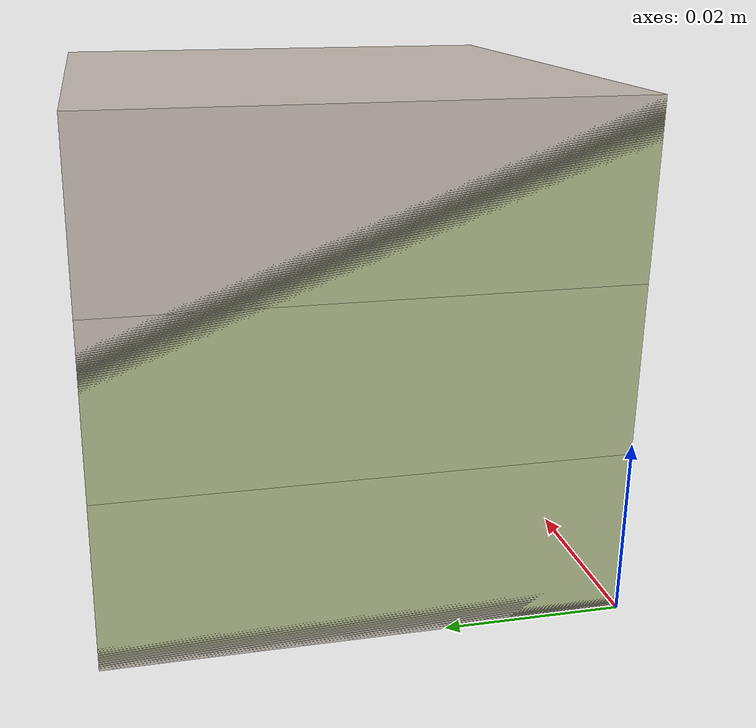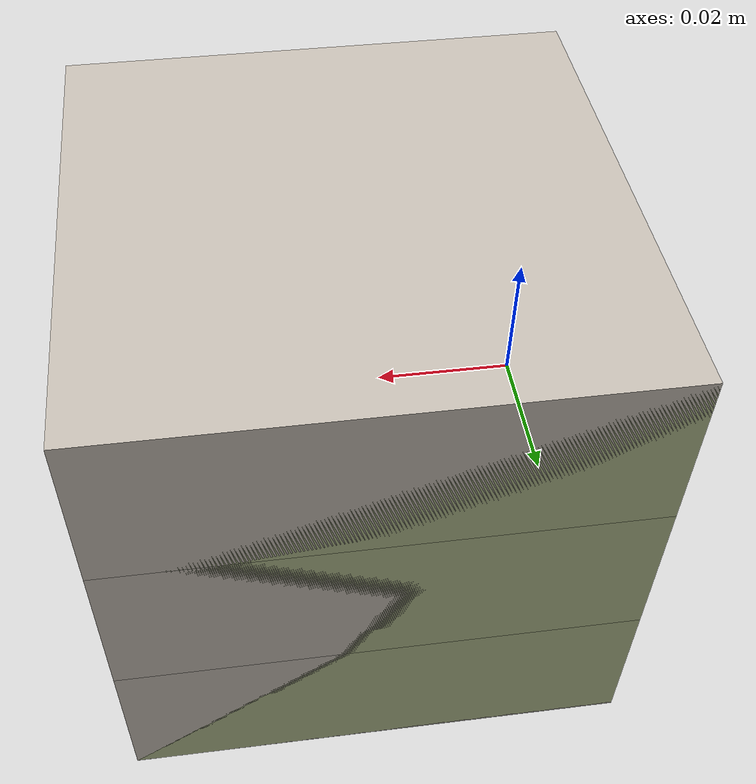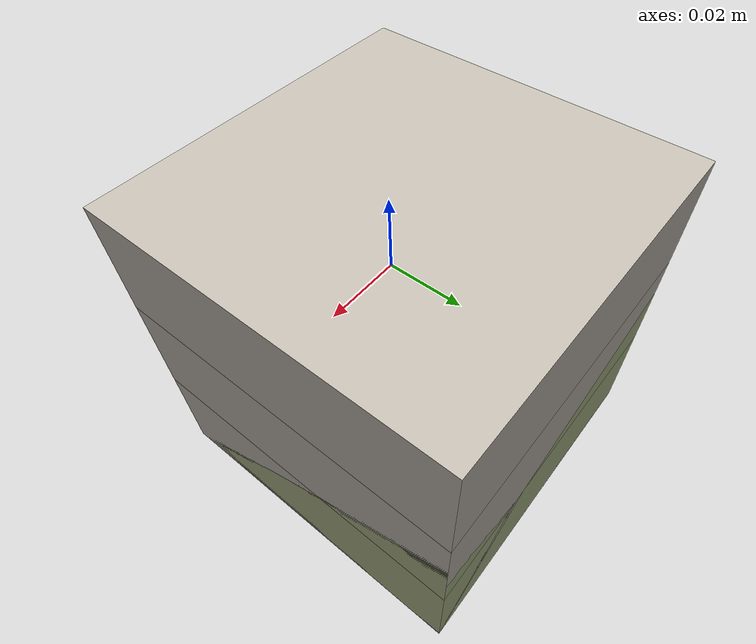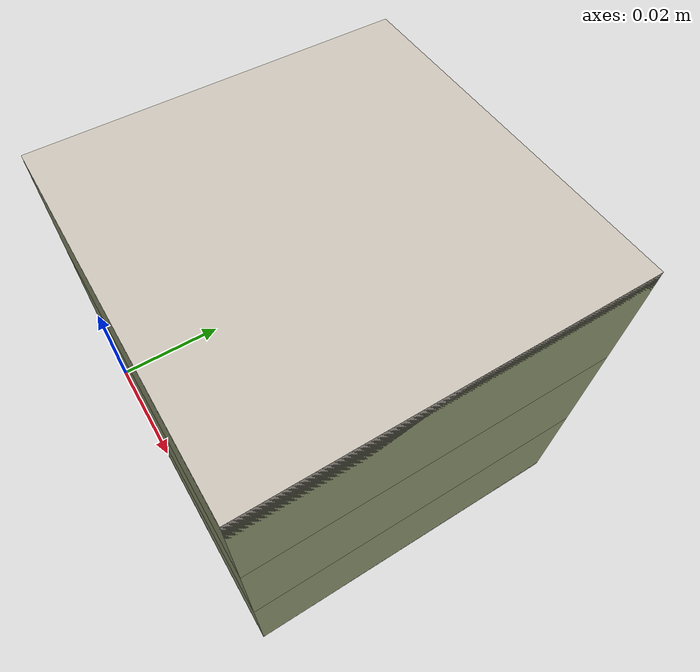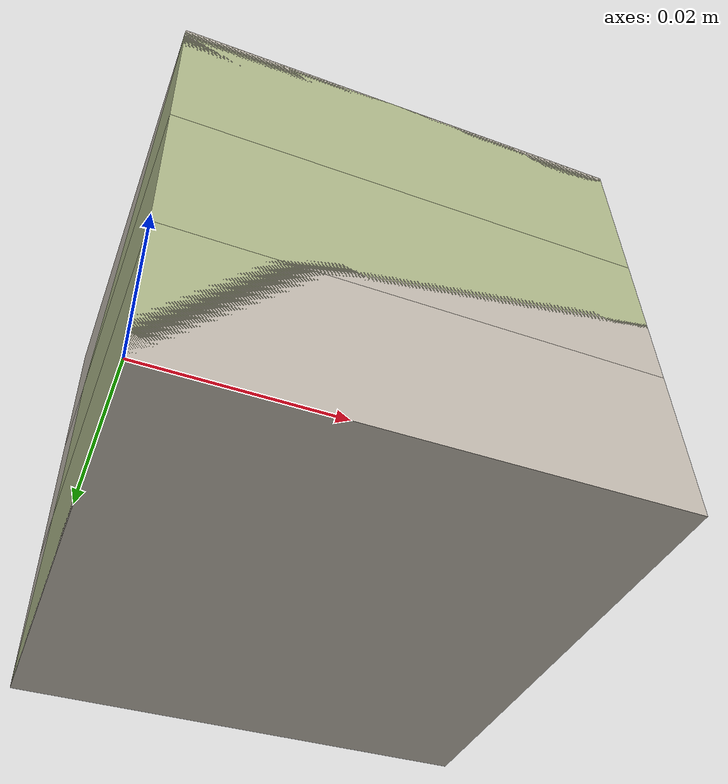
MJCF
<mujoco model="rubik-v1.50">
	<asset>
		<texture name='rubik' file="rubik/rubik_slice.png" gridsize="3 4" gridlayout=".U..LFRB.D.."/>
		<material name="MatRubik" texture="rubik" specular="1" shininess=".3"/>
	</asset>

	<worldbody>
		<body name="middle" pos=".0285 .0285 .0285">
			<geom name="middle" type="box" size=".0285 .0285 .0095" material="MatRubik" condim="4"/>
			<site name="center" pos="0 0 0" rgba="1 0 0 1" size="0.01 0.01 0.01" />
			<joint name="cube_tx" type="slide" axis="1 0 0" limited="false"/>
			<joint name="cube_ty" type="slide" axis="0 1 0" limited="false"/>
			<joint name="cube_tz" type="slide" axis="0 0 1" limited="false"/>
			<joint name="cube_rot" type="ball" limited="false"/>
			<body name="top" pos="0 0 .019">
				<geom name="top" type="box" size=".0285 .0285 .0095" material="MatRubik"  condim="4" friction="0.4 0.005 0.001" />
				<joint name="face_top" type="hinge" axis="0 0 1" limited="false"/>
			</body>
			<body name="bottom" pos="0 0 -.019">
				<geom name="bottom" type="box" size=".0285 .0285 .0095" material="MatRubik"  condim="4" friction="0.4 0.005 0.001"/>
				<joint name="face_bottom" type="hinge" axis="0 0 1" limited="false"/>
			</body>
		</body>
		<body name="annotation:outer_bound" pos="0.0285 0.0285 0.0285">
			<geom conaffinity="0" contype="0" mass="0" pos="0 0 0" rgba="0.417022 0.720324 0.000114 0.1" size="0.0285 0.0285 0.0285" type="box" />
		</body>
	</worldbody>

</mujoco>
